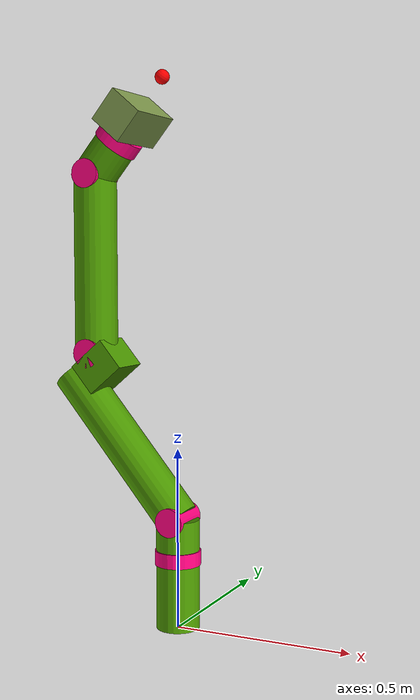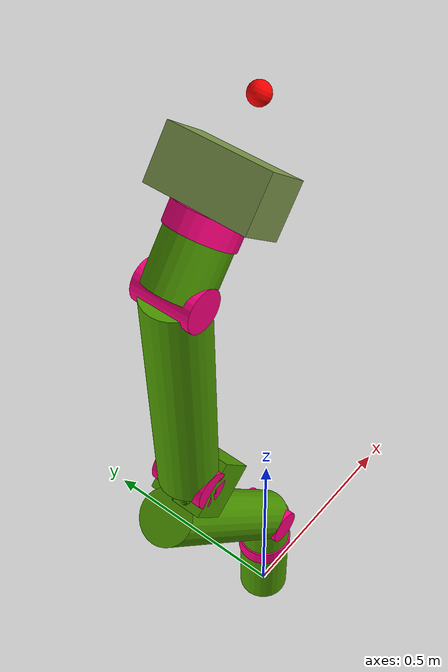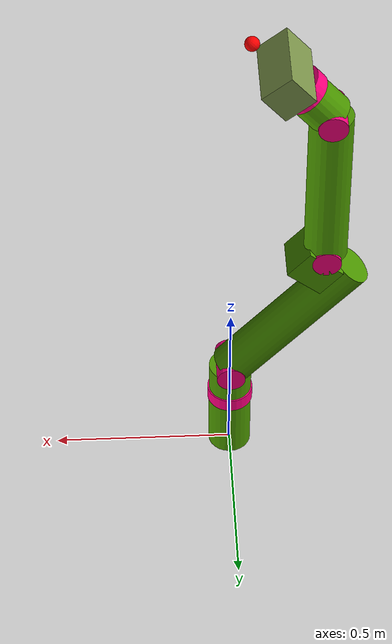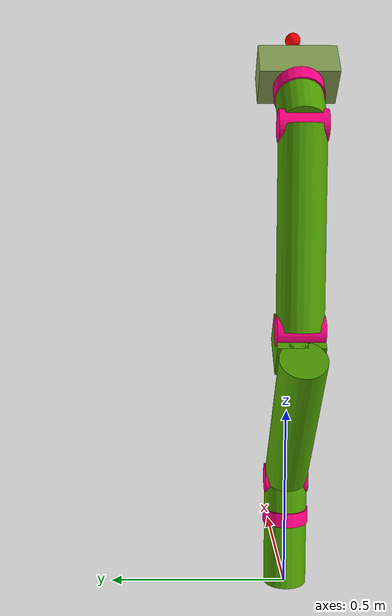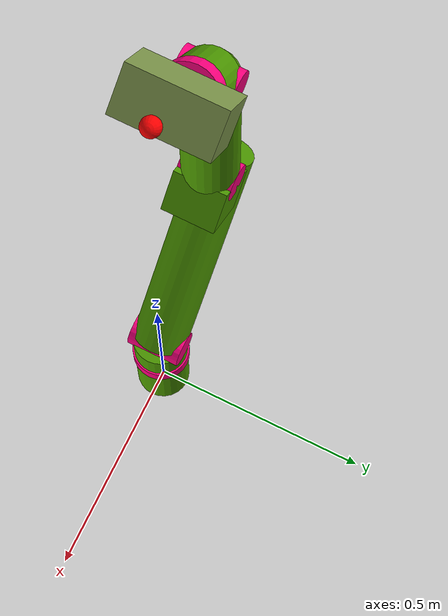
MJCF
<mujoco model="Open Manipulator5">
    <compiler inertiafromgeom="true" angle="degree"/>
    <option timestep="0.01" gravity="0 0 -0" cone="elliptic" jacobian="auto" solver="Newton" impratio="1.0"/>
    <!--  collision="predefined"  -->
    <option>
        <flag gravity="enable" override="enable"/>
    </option>
    <default>
        <geom contype="1" conaffinity="1" condim="3"/>
        <joint limited="false" damping="0.5" armature="0.1" stiffness="0" frictionloss="0.1"/>
        <motor gear="1 0 0 0 0 0" ctrllimited="false" ctrlrange="-100 100"/>
    </default>
    <worldbody>
        <!--  Link1  -->
        <body name="link1" pos="0 0 0" euler="0 0 0">
            <joint name="L1" pos="0 0 0" type="hinge" axis="0 0 1" limited="false"/>
            <geom type="cylinder" pos="0 0 0.153" size="0.06 0.153" rgba="0.3 0.6 0 1"/>
            <geom type="cylinder" pos="0 0 0.2" euler="0 0 0" size="0.064 0.02" rgba="1 0 0.5 1"/>
            <!--  Link2  -->
            <body name="link2" pos="0 0 0.306" euler="90 0 40">
                <joint name="L2" pos="0 0 0" type="hinge" axis="0 0 1" limited="true" range="-150 150"/>
                <geom type="cylinder" pos="0 0.256 0" euler="-90 0 0" size="0.06 0.256" rgba="0.3 0.6 0 1"/>
                <geom type="cylinder" pos="0 0 0" euler="0 0 0" size="0.04 0.06" rgba="1 0 0.5 1"/>
                <geom type="box" pos="0.096 0.464 0" euler="0 0 0" size="0.06 0.048 0.06" rgba="0.3 0.6 0 1"/>
                <!--  Link3 -->
                <body name="link3" pos="0.096 0.512 0" euler="0 0 -40">
                    <joint name="L3" pos="0 0 0" type="hinge" axis="0 0 1" limited="true" range="-200 100"/>
                    <geom type="cylinder" pos="0 0.248 0" euler="-90 0 0" size="0.06 0.248" rgba="0.3 0.6 0 1"/>
                    <geom type="cylinder" pos="0 0 0" euler="0 0 0" size="0.04 0.06" rgba="1 0 0.5 1"/>
                    <!--  Link4 -->
                    <body name="link4" pos="0 0.496 0" euler="0 0 -40">
                        <joint name="L4" pos="0 0 0" type="hinge" axis="0 0 1" limited="true" range="-160 160"/>
                        <geom type="cylinder" pos="0 0.06 0" euler="-90 0 0" size="0.06 0.06" rgba="0.3 0.6 0 1"/>
                        <geom type="cylinder" pos="0 0 0" euler="0 0 0" size="0.04 0.06" rgba="1 0 0.5 1"/>
                        <!--  Link5 -->
                        <body name="link5" pos="0 0.12 0" euler="-90 0 0">
                            <joint name="L5" pos="0 0 0" type="hinge" axis="0 0 1" limited="true" range="-130 130"/>
                            <geom type="box" pos="0 0 0.0704" euler="0 0 0" size="0.0504 0.1 0.0504" rgba="0.5 0.6 0.3 1"/>
                            <geom type="cylinder" pos="0 0 0" euler="0 0 0" size="0.064 0.02" rgba="1 0 0.5 1"/>
                            <!--  Fingers -->
                            <body name="fingers" pos="0 0 0.2096" euler="0 0 0">
                                <site name="EE" type="sphere" pos="0 0 0" size="0.02" rgba="1 0 0 1"/>
                            </body>
                        </body>
                    </body>
                </body>
            </body>
        </body>
    </worldbody>
    <actuator>
        <motor joint="L1" name="link1" gear="1" ctrllimited="true" ctrlrange="-1193 1193"/>
        <motor joint="L2" name="link2" gear="1" ctrllimited="true" ctrlrange="-1193 1193"/>
        <motor joint="L3" name="link3" gear="1" ctrllimited="true" ctrlrange="-1193 1193"/>
        <motor joint="L4" name="link4" gear="1" ctrllimited="true" ctrlrange="-1193 1193"/>
        <motor joint="L5" name="link5" gear="1" ctrllimited="true" ctrlrange="-1193 1193"/>
    </actuator>
</mujoco>
